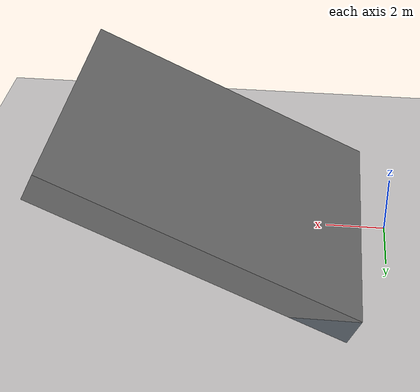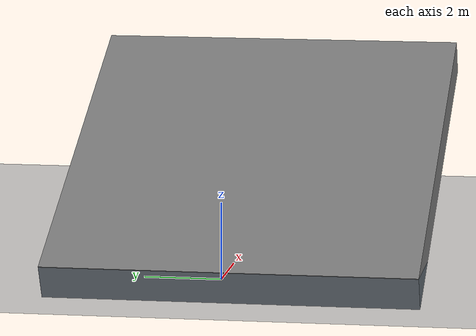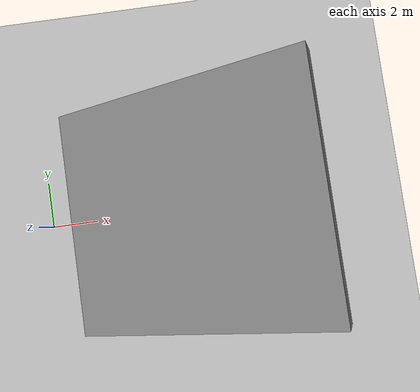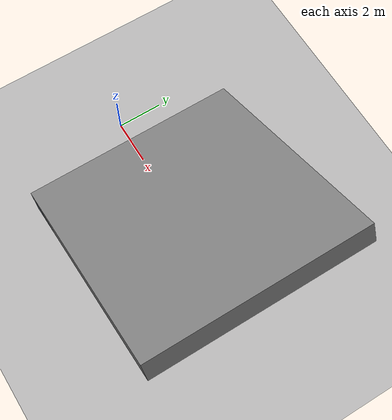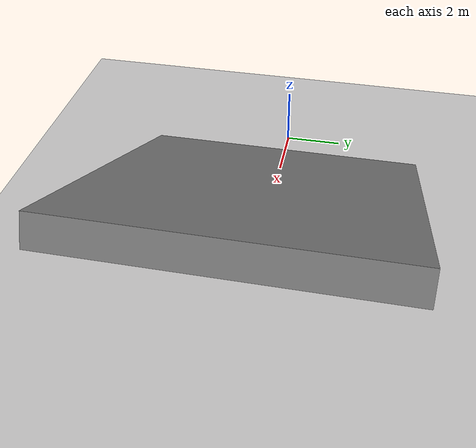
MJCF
<mujoco model="slope_8">
  <!-- Terrain Type: slope, Level: 8, Slope angle (degrees): 25.4544 -->
  <statistic center="0 0 0.1" extent="0.8" />
  <visual>
    <headlight diffuse="0.6 0.6 0.6" ambient="0.3 0.3 0.3" specular="0 0 0" />
    <rgba haze="0.15 0.25 0.35 1" />
    <global azimuth="-130" elevation="-20" />
  </visual>
  <asset>
    <texture type="skybox" builtin="gradient" rgb1="0.3 0.5 0.7" rgb2="0 0 0" width="512" height="3072" />
    <texture type="2d" name="groundplane" builtin="checker" mark="edge" rgb1="0.2 0.3 0.4" rgb2="0.1 0.2 0.3" markrgb="0.8 0.8 0.8" width="300" height="300" />
    <material name="groundplane" texture="groundplane" texuniform="true" texrepeat="5 5" reflectance="0.0" />
  </asset>
  <worldbody>
    <light pos="0 0 1.5" dir="0 0 -1" directional="true" />
    <geom name="floor" size="0 0 0.05" type="plane" material="groundplane" />
    <geom pos="6.01489668973904 0.0 1.9285363660944521" type="box" size="5.537544582213312 5.0 0.5" quat="0.9754299738605267 0.0 -0.22030970494840266 0.0" />
  </worldbody>
</mujoco>
